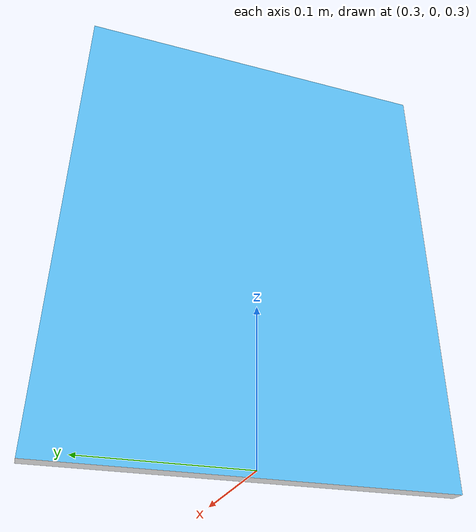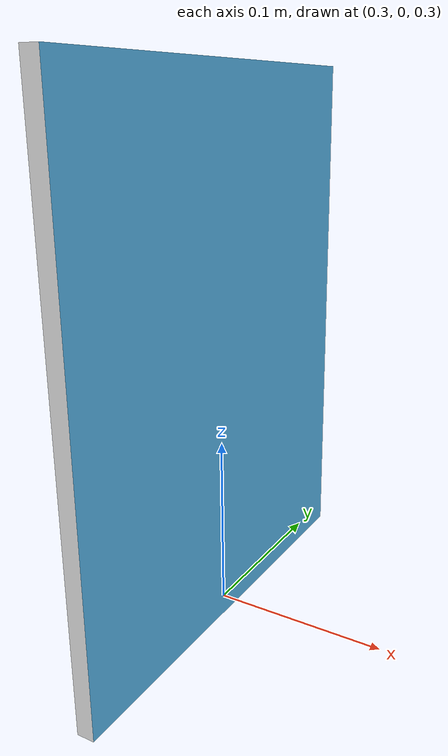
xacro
<?xml version="1.0"?>
<robot name="chessboard">

    <!-- virtual link -->
    <link name="world"/>

    <joint name="chessboard_mount" type="fixed">
        <origin xyz="0.3 0 0.45"/>
        <parent link="world"/>
        <child link="chessboard"/>
    </joint>

    <link name="chessboard">
        <inertial>
            <mass value="0.001"/>
            <inertia ixx="1.0" ixy="0.0" ixz="0.0"
                     iyy="1.0" iyz="0.0"
                     izz="1.0"/>
        </inertial>
        <visual>
            <geometry>
                <mesh filename="package://ocam-calibration/meshes/chessboard.dae"/>
            </geometry>
        </visual>
        <collision>
            <geometry>
                <mesh filename="package://ocam-calibration/meshes/chessboard.dae"/>
            </geometry>
        </collision>
    </link>

    <gazebo>
        <static>true</static>
        <gravity>false</gravity>
    </gazebo>
</robot>
